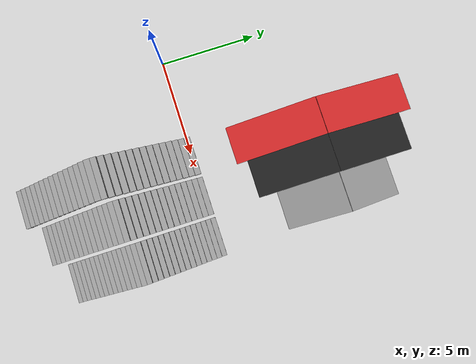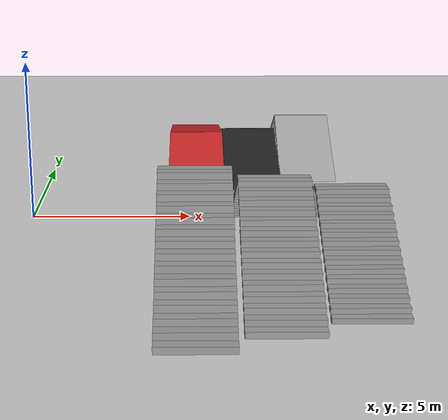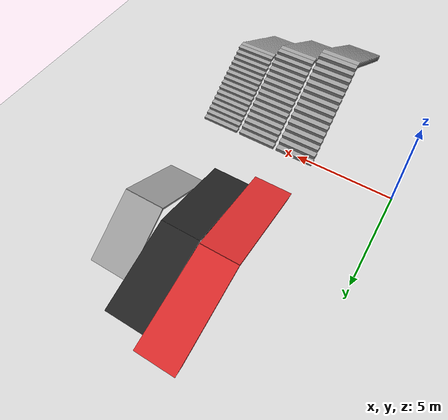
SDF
<sdf version="1.7">
 <world name="default">
  <light name="sun" type="directional">
   <pose>0 0 10 0 -0 0</pose>
   <diffuse>0.8 0.8 0.8 1</diffuse>
   <specular>0.2 0.2 0.2 1</specular>
   <attenuation>
    <range>1000</range>
    <constant>0.9</constant>
    <linear>0.01</linear>
    <quadratic>0.001</quadratic>
   </attenuation>
   <direction>-0.5 0.1 -0.9</direction>
   <spot><inner_angle>0</inner_angle><outer_angle>0</outer_angle><falloff>0</falloff></spot>
  </light>
  <model name="ground_plane">
   <static>1</static>
   <link name="link">
    <collision name="collision">
     <geometry><plane><normal>0 0 1</normal><size>100 100</size></plane></geometry>
     <surface>
      <contact><collide_bitmask>65535</collide_bitmask></contact>
      <friction><ode><mu>100</mu><mu2>50</mu2></ode></friction>
     </surface>
    </collision>
    <visual name="visual">
     <cast_shadows>0</cast_shadows>
     <geometry><plane><normal>0 0 1</normal><size>100 100</size></plane></geometry>
     <material>
      <script><uri>file://media/materials/scripts/gazebo.material</uri><name>Gazebo/Grey</name></script>
     </material>
    </visual>
   </link>
  </model>
  <gravity>0 0 -9.8</gravity>
  <magnetic_field>6e-06 2.3e-05 -4.2e-05</magnetic_field>
  <atmosphere type="adiabatic"/>
  <physics type="ode">
   <max_step_size>0.001</max_step_size>
   <real_time_factor>1</real_time_factor>
   <real_time_update_rate>1000</real_time_update_rate>
  </physics>
  <scene><ambient>0.4 0.4 0.4 1</ambient><background>0.7 0.7 0.7 1</background><shadows>1</shadows></scene>
  <spherical_coordinates>
   <surface_model>EARTH_WGS84</surface_model>
   <latitude_deg>0</latitude_deg>
   <longitude_deg>0</longitude_deg>
   <elevation>0</elevation>
   <heading_deg>0</heading_deg>
  </spherical_coordinates>
  <model name="3longstairs">
   <pose>5.245 -4.4525 0 0 -0 0</pose>
   <link name="Stairs_1">
    <visual name="Stairs_1_Visual_0">
     <pose>4.245 4.5225 0.075 0 -0 0</pose>
     <geometry><box><size>2 0.26 0.15</size></box></geometry>
     <material>
      <script><uri>file://media/materials/scripts/gazebo.material</uri><name>Gazebo/Grey</name></script>
      <ambient>1 1 1 1</ambient>
     </material>
     <meta><layer>0</layer></meta>
    </visual>
    <collision name="Stairs_1_Collision_0">
     <geometry><box><size>2 0.26 0.15</size></box></geometry>
     <pose>4.245 4.5225 0.075 0 -0 0</pose>
    </collision>
    <visual name="Stairs_1_Visual_1">
     <pose>4.245 4.2625 0.225 0 -0 0</pose>
     <geometry><box><size>2 0.26 0.15</size></box></geometry>
     <material>
      <script><uri>file://media/materials/scripts/gazebo.material</uri><name>Gazebo/Grey</name></script>
      <ambient>1 1 1 1</ambient>
     </material>
     <meta><layer>0</layer></meta>
    </visual>
    <collision name="Stairs_1_Collision_1">
     <geometry><box><size>2 0.26 0.15</size></box></geometry>
     <pose>4.245 4.2625 0.225 0 -0 0</pose>
    </collision>
    <visual name="Stairs_1_Visual_2">
     <pose>4.245 4.0025 0.375 0 -0 0</pose>
     <geometry><box><size>2 0.26 0.15</size></box></geometry>
     <material>
      <script><uri>file://media/materials/scripts/gazebo.material</uri><name>Gazebo/Grey</name></script>
      <ambient>1 1 1 1</ambient>
     </material>
     <meta><layer>0</layer></meta>
    </visual>
    <collision name="Stairs_1_Collision_2">
     <geometry><box><size>2 0.26 0.15</size></box></geometry>
     <pose>4.245 4.0025 0.375 0 -0 0</pose>
    </collision>
    <visual name="Stairs_1_Visual_3">
     <pose>4.245 3.7425 0.525 0 -0 0</pose>
     <geometry><box><size>2 0.26 0.15</size></box></geometry>
     <material>
      <script><uri>file://media/materials/scripts/gazebo.material</uri><name>Gazebo/Grey</name></script>
      <ambient>1 1 1 1</ambient>
     </material>
     <meta><layer>0</layer></meta>
    </visual>
    <collision name="Stairs_1_Collision_3">
     <geometry><box><size>2 0.26 0.15</size></box></geometry>
     <pose>4.245 3.7425 0.525 0 -0 0</pose>
    </collision>
    <visual name="Stairs_1_Visual_4">
     <pose>4.245 3.4825 0.675 0 -0 0</pose>
     <geometry><box><size>2 0.26 0.15</size></box></geometry>
     <material>
      <script><uri>file://media/materials/scripts/gazebo.material</uri><name>Gazebo/Grey</name></script>
      <ambient>1 1 1 1</ambient>
     </material>
     <meta><layer>0</layer></meta>
    </visual>
    <collision name="Stairs_1_Collision_4">
     <geometry><box><size>2 0.26 0.15</size></box></geometry>
     <pose>4.245 3.4825 0.675 0 -0 0</pose>
    </collision>
    <visual name="Stairs_1_Visual_5">
     <pose>4.245 3.2225 0.825 0 -0 0</pose>
     <geometry><box><size>2 0.26 0.15</size></box></geometry>
     <material>
      <script><uri>file://media/materials/scripts/gazebo.material</uri><name>Gazebo/Grey</name></script>
      <ambient>1 1 1 1</ambient>
     </material>
     <meta><layer>0</layer></meta>
    </visual>
    <collision name="Stairs_1_Collision_5">
     <geometry><box><size>2 0.26 0.15</size></box></geometry>
     <pose>4.245 3.2225 0.825 0 -0 0</pose>
    </collision>
    <visual name="Stairs_1_Visual_6">
     <pose>4.245 2.9625 0.975 0 -0 0</pose>
     <geometry><box><size>2 0.26 0.15</size></box></geometry>
     <material>
      <script><uri>file://media/materials/scripts/gazebo.material</uri><name>Gazebo/Grey</name></script>
      <ambient>1 1 1 1</ambient>
     </material>
     <meta><layer>0</layer></meta>
    </visual>
    <collision name="Stairs_1_Collision_6">
     <geometry><box><size>2 0.26 0.15</size></box></geometry>
     <pose>4.245 2.9625 0.975 0 -0 0</pose>
    </collision>
    <visual name="Stairs_1_Visual_7">
     <pose>4.245 2.7025 1.125 0 -0 0</pose>
     <geometry><box><size>2 0.26 0.15</size></box></geometry>
     <material>
      <script><uri>file://media/materials/scripts/gazebo.material</uri><name>Gazebo/Grey</name></script>
      <ambient>1 1 1 1</ambient>
     </material>
     <meta><layer>0</layer></meta>
    </visual>
    <collision name="Stairs_1_Collision_7">
     <geometry><box><size>2 0.26 0.15</size></box></geometry>
     <pose>4.245 2.7025 1.125 0 -0 0</pose>
    </collision>
    <visual name="Stairs_1_Visual_8">
     <pose>4.245 2.4425 1.275 0 -0 0</pose>
     <geometry><box><size>2 0.26 0.15</size></box></geometry>
     <material>
      <script><uri>file://media/materials/scripts/gazebo.material</uri><name>Gazebo/Grey</name></script>
      <ambient>1 1 1 1</ambient>
     </material>
     <meta><layer>0</layer></meta>
    </visual>
    <collision name="Stairs_1_Collision_8">
     <geometry><box><size>2 0.26 0.15</size></box></geometry>
     <pose>4.245 2.4425 1.275 0 -0 0</pose>
    </collision>
    <visual name="Stairs_1_Visual_9">
     <pose>4.245 2.1825 1.425 0 -0 0</pose>
     <geometry><box><size>2 0.26 0.15</size></box></geometry>
     <material>
      <script><uri>file://media/materials/scripts/gazebo.material</uri><name>Gazebo/Grey</name></script>
      <ambient>1 1 1 1</ambient>
     </material>
     <meta><layer>0</layer></meta>
    </visual>
    <collision name="Stairs_1_Collision_9">
     <geometry><box><size>2 0.26 0.15</size></box></geometry>
     <pose>4.245 2.1825 1.425 0 -0 0</pose>
    </collision>
    <visual name="Stairs_1_Visual_10">
     <pose>4.245 1.9225 1.575 0 -0 0</pose>
     <geometry><box><size>2 0.26 0.15</size></box></geometry>
     <material>
      <script><uri>file://media/materials/scripts/gazebo.material</uri><name>Gazebo/Grey</name></script>
      <ambient>1 1 1 1</ambient>
     </material>
     <meta><layer>0</layer></meta>
    </visual>
    <collision name="Stairs_1_Collision_10">
     <geometry><box><size>2 0.26 0.15</size></box></geometry>
     <pose>4.245 1.9225 1.575 0 -0 0</pose>
    </collision>
    <visual name="Stairs_1_Visual_11">
     <pose>4.245 1.6625 1.725 0 -0 0</pose>
     <geometry><box><size>2 0.26 0.15</size></box></geometry>
     <material>
      <script><uri>file://media/materials/scripts/gazebo.material</uri><name>Gazebo/Grey</name></script>
      <ambient>1 1 1 1</ambient>
     </material>
     <meta><layer>0</layer></meta>
    </visual>
    <collision name="Stairs_1_Collision_11">
     <geometry><box><size>2 0.26 0.15</size></box></geometry>
     <pose>4.245 1.6625 1.725 0 -0 0</pose>
    </collision>
    <visual name="Stairs_1_Visual_12">
     <pose>4.245 1.4025 1.875 0 -0 0</pose>
     <geometry><box><size>2 0.26 0.15</size></box></geometry>
     <material>
      <script><uri>file://media/materials/scripts/gazebo.material</uri><name>Gazebo/Grey</name></script>
      <ambient>1 1 1 1</ambient>
     </material>
     <meta><layer>0</layer></meta>
    </visual>
    <collision name="Stairs_1_Collision_12">
     <geometry><box><size>2 0.26 0.15</size></box></geometry>
     <pose>4.245 1.4025 1.875 0 -0 0</pose>
    </collision>
    <visual name="Stairs_1_Visual_13">
     <pose>4.245 1.1425 2.025 0 -0 0</pose>
     <geometry><box><size>2 0.26 0.15</size></box></geometry>
     <material>
      <script><uri>file://media/materials/scripts/gazebo.material</uri><name>Gazebo/Grey</name></script>
      <ambient>1 1 1 1</ambient>
     </material>
     <meta><layer>0</layer></meta>
    </visual>
    <collision name="Stairs_1_Collision_13">
     <geometry><box><size>2 0.26 0.15</size></box></geometry>
     <pose>4.245 1.1425 2.025 0 -0 0</pose>
    </collision>
    <visual name="Stairs_1_Visual_14">
     <pose>4.245 0.8825 2.175 0 -0 0</pose>
     <geometry><box><size>2 0.26 0.15</size></box></geometry>
     <material>
      <script><uri>file://media/materials/scripts/gazebo.material</uri><name>Gazebo/Grey</name></script>
      <ambient>1 1 1 1</ambient>
     </material>
     <meta><layer>0</layer></meta>
    </visual>
    <collision name="Stairs_1_Collision_14">
     <geometry><box><size>2 0.26 0.15</size></box></geometry>
     <pose>4.245 0.8825 2.175 0 -0 0</pose>
    </collision>
   </link>
   <link name="Stairs_2">
    <visual name="Stairs_2_Visual_0">
     <pose>4.245 -3.0175 0.075 0 -0 -3.14159</pose>
     <geometry><box><size>2 0.26 0.15</size></box></geometry>
     <material>
      <script><uri>file://media/materials/scripts/gazebo.material</uri><name>Gazebo/Grey</name></script>
      <ambient>1 1 1 1</ambient>
     </material>
     <meta><layer>0</layer></meta>
    </visual>
    <collision name="Stairs_2_Collision_0">
     <geometry><box><size>2 0.26 0.15</size></box></geometry>
     <pose>4.245 -3.0175 0.075 0 -0 -3.14159</pose>
    </collision>
    <visual name="Stairs_2_Visual_1">
     <pose>4.245 -2.7575 0.225 0 -0 -3.14159</pose>
     <geometry><box><size>2 0.26 0.15</size></box></geometry>
     <material>
      <script><uri>file://media/materials/scripts/gazebo.material</uri><name>Gazebo/Grey</name></script>
      <ambient>1 1 1 1</ambient>
     </material>
     <meta><layer>0</layer></meta>
    </visual>
    <collision name="Stairs_2_Collision_1">
     <geometry><box><size>2 0.26 0.15</size></box></geometry>
     <pose>4.245 -2.7575 0.225 0 -0 -3.14159</pose>
    </collision>
    <visual name="Stairs_2_Visual_2">
     <pose>4.245 -2.4975 0.375 0 -0 -3.14159</pose>
     <geometry><box><size>2 0.26 0.15</size></box></geometry>
     <material>
      <script><uri>file://media/materials/scripts/gazebo.material</uri><name>Gazebo/Grey</name></script>
      <ambient>1 1 1 1</ambient>
     </material>
     <meta><layer>0</layer></meta>
    </visual>
    <collision name="Stairs_2_Collision_2">
     <geometry><box><size>2 0.26 0.15</size></box></geometry>
     <pose>4.245 -2.4975 0.375 0 -0 -3.14159</pose>
    </collision>
    <visual name="Stairs_2_Visual_3">
     <pose>4.245 -2.2375 0.525 0 -0 -3.14159</pose>
     <geometry><box><size>2 0.26 0.15</size></box></geometry>
     <material>
      <script><uri>file://media/materials/scripts/gazebo.material</uri><name>Gazebo/Grey</name></script>
      <ambient>1 1 1 1</ambient>
     </material>
     <meta><layer>0</layer></meta>
    </visual>
    <collision name="Stairs_2_Collision_3">
     <geometry><box><size>2 0.26 0.15</size></box></geometry>
     <pose>4.245 -2.2375 0.525 0 -0 -3.14159</pose>
    </collision>
    <visual name="Stairs_2_Visual_4">
     <pose>4.245 -1.9775 0.675 0 -0 -3.14159</pose>
     <geometry><box><size>2 0.26 0.15</size></box></geometry>
     <material>
      <script><uri>file://media/materials/scripts/gazebo.material</uri><name>Gazebo/Grey</name></script>
      <ambient>1 1 1 1</ambient>
     </material>
     <meta><layer>0</layer></meta>
    </visual>
    <collision name="Stairs_2_Collision_4">
     <geometry><box><size>2 0.26 0.15</size></box></geometry>
     <pose>4.245 -1.9775 0.675 0 -0 -3.14159</pose>
    </collision>
    <visual name="Stairs_2_Visual_5">
     <pose>4.245 -1.7175 0.825 0 -0 -3.14159</pose>
     <geometry><box><size>2 0.26 0.15</size></box></geometry>
     <material>
      <script><uri>file://media/materials/scripts/gazebo.material</uri><name>Gazebo/Grey</name></script>
      <ambient>1 1 1 1</ambient>
     </material>
     <meta><layer>0</layer></meta>
    </visual>
    <collision name="Stairs_2_Collision_5">
     <geometry><box><size>2 0.26 0.15</size></box></geometry>
     <pose>4.245 -1.7175 0.825 0 -0 -3.14159</pose>
    </collision>
    <visual name="Stairs_2_Visual_6">
     <pose>4.245 -1.4575 0.975 0 -0 -3.14159</pose>
     <geometry><box><size>2 0.26 0.15</size></box></geometry>
     <material>
      <script><uri>file://media/materials/scripts/gazebo.material</uri><name>Gazebo/Grey</name></script>
      <ambient>1 1 1 1</ambient>
     </material>
     <meta><layer>0</layer></meta>
    </visual>
    <collision name="Stairs_2_Collision_6">
     <geometry><box><size>2 0.26 0.15</size></box></geometry>
     <pose>4.245 -1.4575 0.975 0 -0 -3.14159</pose>
    </collision>
    <visual name="Stairs_2_Visual_7">
     <pose>4.245 -1.1975 1.125 0 -0 -3.14159</pose>
     <geometry><box><size>2 0.26 0.15</size></box></geometry>
     <material>
      <script><uri>file://media/materials/scripts/gazebo.material</uri><name>Gazebo/Grey</name></script>
      <ambient>1 1 1 1</ambient>
     </material>
     <meta><layer>0</layer></meta>
    </visual>
    <collision name="Stairs_2_Collision_7">
     <geometry><box><size>2 0.26 0.15</size></box></geometry>
     <pose>4.245 -1.1975 1.125 0 -0 -3.14159</pose>
    </collision>
    <visual name="Stairs_2_Visual_8">
     <pose>4.245 -0.9375 1.275 0 -0 -3.14159</pose>
     <geometry><box><size>2 0.26 0.15</size></box></geometry>
     <material>
      <script><uri>file://media/materials/scripts/gazebo.material</uri><name>Gazebo/Grey</name></script>
      <ambient>1 1 1 1</ambient>
     </material>
     <meta><layer>0</layer></meta>
    </visual>
    <collision name="Stairs_2_Collision_8">
     <geometry><box><size>2 0.26 0.15</size></box></geometry>
     <pose>4.245 -0.9375 1.275 0 -0 -3.14159</pose>
    </collision>
    <visual name="Stairs_2_Visual_9">
     <pose>4.245 -0.6775 1.425 0 -0 -3.14159</pose>
     <geometry><box><size>2 0.26 0.15</size></box></geometry>
     <material>
      <script><uri>file://media/materials/scripts/gazebo.material</uri><name>Gazebo/Grey</name></script>
      <ambient>1 1 1 1</ambient>
     </material>
     <meta><layer>0</layer></meta>
    </visual>
    <collision name="Stairs_2_Collision_9">
     <geometry><box><size>2 0.26 0.15</size></box></geometry>
     <pose>4.245 -0.6775 1.425 0 -0 -3.14159</pose>
    </collision>
    <visual name="Stairs_2_Visual_10">
     <pose>4.245 -0.4175 1.575 0 -0 -3.14159</pose>
     <geometry><box><size>2 0.26 0.15</size></box></geometry>
     <material>
      <script><uri>file://media/materials/scripts/gazebo.material</uri><name>Gazebo/Grey</name></script>
      <ambient>1 1 1 1</ambient>
     </material>
     <meta><layer>0</layer></meta>
    </visual>
    <collision name="Stairs_2_Collision_10">
     <geometry><box><size>2 0.26 0.15</size></box></geometry>
     <pose>4.245 -0.4175 1.575 0 -0 -3.14159</pose>
    </collision>
    <visual name="Stairs_2_Visual_11">
     <pose>4.245 -0.1575 1.725 0 -0 -3.14159</pose>
     <geometry><box><size>2 0.26 0.15</size></box></geometry>
     <material>
      <script><uri>file://media/materials/scripts/gazebo.material</uri><name>Gazebo/Grey</name></script>
      <ambient>1 1 1 1</ambient>
     </material>
     <meta><layer>0</layer></meta>
    </visual>
    <collision name="Stairs_2_Collision_11">
     <geometry><box><size>2 0.26 0.15</size></box></geometry>
     <pose>4.245 -0.1575 1.725 0 -0 -3.14159</pose>
    </collision>
    <visual name="Stairs_2_Visual_12">
     <pose>4.245 0.1025 1.875 0 -0 -3.14159</pose>
     <geometry><box><size>2 0.26 0.15</size></box></geometry>
     <material>
      <script><uri>file://media/materials/scripts/gazebo.material</uri><name>Gazebo/Grey</name></script>
      <ambient>1 1 1 1</ambient>
     </material>
     <meta><layer>0</layer></meta>
    </visual>
    <collision name="Stairs_2_Collision_12">
     <geometry><box><size>2 0.26 0.15</size></box></geometry>
     <pose>4.245 0.1025 1.875 0 -0 -3.14159</pose>
    </collision>
    <visual name="Stairs_2_Visual_13">
     <pose>4.245 0.3625 2.025 0 -0 -3.14159</pose>
     <geometry><box><size>2 0.26 0.15</size></box></geometry>
     <material>
      <script><uri>file://media/materials/scripts/gazebo.material</uri><name>Gazebo/Grey</name></script>
      <ambient>1 1 1 1</ambient>
     </material>
     <meta><layer>0</layer></meta>
    </visual>
    <collision name="Stairs_2_Collision_13">
     <geometry><box><size>2 0.26 0.15</size></box></geometry>
     <pose>4.245 0.3625 2.025 0 -0 -3.14159</pose>
    </collision>
    <visual name="Stairs_2_Visual_14">
     <pose>4.245 0.6225 2.175 0 -0 -3.14159</pose>
     <geometry><box><size>2 0.26 0.15</size></box></geometry>
     <material>
      <script><uri>file://media/materials/scripts/gazebo.material</uri><name>Gazebo/Grey</name></script>
      <ambient>1 1 1 1</ambient>
     </material>
     <meta><layer>0</layer></meta>
    </visual>
    <collision name="Stairs_2_Collision_14">
     <geometry><box><size>2 0.26 0.15</size></box></geometry>
     <pose>4.245 0.6225 2.175 0 -0 -3.14159</pose>
    </collision>
   </link>
   <link name="Stairs_3">
    <visual name="Stairs_3_Visual_0">
     <pose>2.075 4.5075 0.0875 0 -0 0</pose>
     <geometry><box><size>2 0.285 0.175</size></box></geometry>
     <material>
      <script><uri>file://media/materials/scripts/gazebo.material</uri><name>Gazebo/Grey</name></script>
      <ambient>1 1 1 1</ambient>
     </material>
     <meta><layer>0</layer></meta>
    </visual>
    <collision name="Stairs_3_Collision_0">
     <geometry><box><size>2 0.285 0.175</size></box></geometry>
     <pose>2.075 4.5075 0.0875 0 -0 0</pose>
    </collision>
    <visual name="Stairs_3_Visual_1">
     <pose>2.075 4.2225 0.2625 0 -0 0</pose>
     <geometry><box><size>2 0.285 0.175</size></box></geometry>
     <material>
      <script><uri>file://media/materials/scripts/gazebo.material</uri><name>Gazebo/Grey</name></script>
      <ambient>1 1 1 1</ambient>
     </material>
     <meta><layer>0</layer></meta>
    </visual>
    <collision name="Stairs_3_Collision_1">
     <geometry><box><size>2 0.285 0.175</size></box></geometry>
     <pose>2.075 4.2225 0.2625 0 -0 0</pose>
    </collision>
    <visual name="Stairs_3_Visual_2">
     <pose>2.075 3.9375 0.4375 0 -0 0</pose>
     <geometry><box><size>2 0.285 0.175</size></box></geometry>
     <material>
      <script><uri>file://media/materials/scripts/gazebo.material</uri><name>Gazebo/Grey</name></script>
      <ambient>1 1 1 1</ambient>
     </material>
     <meta><layer>0</layer></meta>
    </visual>
    <collision name="Stairs_3_Collision_2">
     <geometry><box><size>2 0.285 0.175</size></box></geometry>
     <pose>2.075 3.9375 0.4375 0 -0 0</pose>
    </collision>
    <visual name="Stairs_3_Visual_3">
     <pose>2.075 3.6525 0.6125 0 -0 0</pose>
     <geometry><box><size>2 0.285 0.175</size></box></geometry>
     <material>
      <script><uri>file://media/materials/scripts/gazebo.material</uri><name>Gazebo/Grey</name></script>
      <ambient>1 1 1 1</ambient>
     </material>
     <meta><layer>0</layer></meta>
    </visual>
    <collision name="Stairs_3_Collision_3">
     <geometry><box><size>2 0.285 0.175</size></box></geometry>
     <pose>2.075 3.6525 0.6125 0 -0 0</pose>
    </collision>
    <visual name="Stairs_3_Visual_4">
     <pose>2.075 3.3675 0.7875 0 -0 0</pose>
     <geometry><box><size>2 0.285 0.175</size></box></geometry>
     <material>
      <script><uri>file://media/materials/scripts/gazebo.material</uri><name>Gazebo/Grey</name></script>
      <ambient>1 1 1 1</ambient>
     </material>
     <meta><layer>0</layer></meta>
    </visual>
    <collision name="Stairs_3_Collision_4">
     <geometry><box><size>2 0.285 0.175</size></box></geometry>
     <pose>2.075 3.3675 0.7875 0 -0 0</pose>
    </collision>
    <visual name="Stairs_3_Visual_5">
     <pose>2.075 3.0825 0.9625 0 -0 0</pose>
     <geometry><box><size>2 0.285 0.175</size></box></geometry>
     <material>
      <script><uri>file://media/materials/scripts/gazebo.material</uri><name>Gazebo/Grey</name></script>
      <ambient>1 1 1 1</ambient>
     </material>
     <meta><layer>0</layer></meta>
    </visual>
    <collision name="Stairs_3_Collision_5">
     <geometry><box><size>2 0.285 0.175</size></box></geometry>
     <pose>2.075 3.0825 0.9625 0 -0 0</pose>
    </collision>
    <visual name="Stairs_3_Visual_6">
     <pose>2.075 2.7975 1.1375 0 -0 0</pose>
     <geometry><box><size>2 0.285 0.175</size></box></geometry>
     <material>
      <script><uri>file://media/materials/scripts/gazebo.material</uri><name>Gazebo/Grey</name></script>
      <ambient>1 1 1 1</ambient>
     </material>
     <meta><layer>0</layer></meta>
    </visual>
    <collision name="Stairs_3_Collision_6">
     <geometry><box><size>2 0.285 0.175</size></box></geometry>
     <pose>2.075 2.7975 1.1375 0 -0 0</pose>
    </collision>
    <visual name="Stairs_3_Visual_7">
     <pose>2.075 2.5125 1.3125 0 -0 0</pose>
     <geometry><box><size>2 0.285 0.175</size></box></geometry>
     <material>
      <script><uri>file://media/materials/scripts/gazebo.material</uri><name>Gazebo/Grey</name></script>
      <ambient>1 1 1 1</ambient>
     </material>
     <meta><layer>0</layer></meta>
    </visual>
    <collision name="Stairs_3_Collision_7">
     <geometry><box><size>2 0.285 0.175</size></box></geometry>
     <pose>2.075 2.5125 1.3125 0 -0 0</pose>
    </collision>
    <visual name="Stairs_3_Visual_8">
     <pose>2.075 2.2275 1.4875 0 -0 0</pose>
     <geometry><box><size>2 0.285 0.175</size></box></geometry>
     <material>
      <script><uri>file://media/materials/scripts/gazebo.material</uri><name>Gazebo/Grey</name></script>
      <ambient>1 1 1 1</ambient>
     </material>
     <meta><layer>0</layer></meta>
    </visual>
    <collision name="Stairs_3_Collision_8">
     <geometry><box><size>2 0.285 0.175</size></box></geometry>
     <pose>2.075 2.2275 1.4875 0 -0 0</pose>
    </collision>
    <visual name="Stairs_3_Visual_9">
     <pose>2.075 1.9425 1.6625 0 -0 0</pose>
     <geometry><box><size>2 0.285 0.175</size></box></geometry>
     <material>
      <script><uri>file://media/materials/scripts/gazebo.material</uri><name>Gazebo/Grey</name></script>
      <ambient>1 1 1 1</ambient>
     </material>
     <meta><layer>0</layer></meta>
    </visual>
    <collision name="Stairs_3_Collision_9">
     <geometry><box><size>2 0.285 0.175</size></box></geometry>
     <pose>2.075 1.9425 1.6625 0 -0 0</pose>
    </collision>
    <visual name="Stairs_3_Visual_10">
     <pose>2.075 1.6575 1.8375 0 -0 0</pose>
     <geometry><box><size>2 0.285 0.175</size></box></geometry>
     <material>
      <script><uri>file://media/materials/scripts/gazebo.material</uri><name>Gazebo/Grey</name></script>
      <ambient>1 1 1 1</ambient>
     </material>
     <meta><layer>0</layer></meta>
    </visual>
    <collision name="Stairs_3_Collision_10">
     <geometry><box><size>2 0.285 0.175</size></box></geometry>
     <pose>2.075 1.6575 1.8375 0 -0 0</pose>
    </collision>
    <visual name="Stairs_3_Visual_11">
     <pose>2.075 1.3725 2.0125 0 -0 0</pose>
     <geometry><box><size>2 0.285 0.175</size></box></geometry>
     <material>
      <script><uri>file://media/materials/scripts/gazebo.material</uri><name>Gazebo/Grey</name></script>
      <ambient>1 1 1 1</ambient>
     </material>
     <meta><layer>0</layer></meta>
    </visual>
    <collision name="Stairs_3_Collision_11">
     <geometry><box><size>2 0.285 0.175</size></box></geometry>
     <pose>2.075 1.3725 2.0125 0 -0 0</pose>
    </collision>
    <visual name="Stairs_3_Visual_12">
     <pose>2.075 1.0875 2.1875 0 -0 0</pose>
     <geometry><box><size>2 0.285 0.175</size></box></geometry>
     <material>
      <script><uri>file://media/materials/scripts/gazebo.material</uri><name>Gazebo/Grey</name></script>
      <ambient>1 1 1 1</ambient>
     </material>
     <meta><layer>0</layer></meta>
    </visual>
    <collision name="Stairs_3_Collision_12">
     <geometry><box><size>2 0.285 0.175</size></box></geometry>
     <pose>2.075 1.0875 2.1875 0 -0 0</pose>
    </collision>
    <visual name="Stairs_3_Visual_13">
     <pose>2.075 0.8025 2.3625 0 -0 0</pose>
     <geometry><box><size>2 0.285 0.175</size></box></geometry>
     <material>
      <script><uri>file://media/materials/scripts/gazebo.material</uri><name>Gazebo/Grey</name></script>
      <ambient>1 1 1 1</ambient>
     </material>
     <meta><layer>0</layer></meta>
    </visual>
    <collision name="Stairs_3_Collision_13">
     <geometry><box><size>2 0.285 0.175</size></box></geometry>
     <pose>2.075 0.8025 2.3625 0 -0 0</pose>
    </collision>
    <visual name="Stairs_3_Visual_14">
     <pose>2.075 0.5175 2.5375 0 -0 0</pose>
     <geometry><box><size>2 0.285 0.175</size></box></geometry>
     <material>
      <script><uri>file://media/materials/scripts/gazebo.material</uri><name>Gazebo/Grey</name></script>
      <ambient>1 1 1 1</ambient>
     </material>
     <meta><layer>0</layer></meta>
    </visual>
    <collision name="Stairs_3_Collision_14">
     <geometry><box><size>2 0.285 0.175</size></box></geometry>
     <pose>2.075 0.5175 2.5375 0 -0 0</pose>
    </collision>
   </link>
   <link name="Stairs_4">
    <visual name="Stairs_4_Visual_0">
     <pose>2.075 -3.7525 0.0875 0 -0 -3.14159</pose>
     <geometry><box><size>2 0.285 0.175</size></box></geometry>
     <material>
      <script><uri>file://media/materials/scripts/gazebo.material</uri><name>Gazebo/Grey</name></script>
      <ambient>1 1 1 1</ambient>
     </material>
     <meta><layer>0</layer></meta>
    </visual>
    <collision name="Stairs_4_Collision_0">
     <geometry><box><size>2 0.285 0.175</size></box></geometry>
     <pose>2.075 -3.7525 0.0875 0 -0 -3.14159</pose>
    </collision>
    <visual name="Stairs_4_Visual_1">
     <pose>2.075 -3.4675 0.2625 0 -0 -3.14159</pose>
     <geometry><box><size>2 0.285 0.175</size></box></geometry>
     <material>
      <script><uri>file://media/materials/scripts/gazebo.material</uri><name>Gazebo/Grey</name></script>
      <ambient>1 1 1 1</ambient>
     </material>
     <meta><layer>0</layer></meta>
    </visual>
    <collision name="Stairs_4_Collision_1">
     <geometry><box><size>2 0.285 0.175</size></box></geometry>
     <pose>2.075 -3.4675 0.2625 0 -0 -3.14159</pose>
    </collision>
    <visual name="Stairs_4_Visual_2">
     <pose>2.075 -3.1825 0.4375 0 -0 -3.14159</pose>
     <geometry><box><size>2 0.285 0.175</size></box></geometry>
     <material>
      <script><uri>file://media/materials/scripts/gazebo.material</uri><name>Gazebo/Grey</name></script>
      <ambient>1 1 1 1</ambient>
     </material>
     <meta><layer>0</layer></meta>
    </visual>
    <collision name="Stairs_4_Collision_2">
     <geometry><box><size>2 0.285 0.175</size></box></geometry>
     <pose>2.075 -3.1825 0.4375 0 -0 -3.14159</pose>
    </collision>
    <visual name="Stairs_4_Visual_3">
     <pose>2.075 -2.8975 0.6125 0 -0 -3.14159</pose>
     <geometry><box><size>2 0.285 0.175</size></box></geometry>
     <material>
      <script><uri>file://media/materials/scripts/gazebo.material</uri><name>Gazebo/Grey</name></script>
      <ambient>1 1 1 1</ambient>
     </material>
     <meta><layer>0</layer></meta>
    </visual>
    <collision name="Stairs_4_Collision_3">
     <geometry><box><size>2 0.285 0.175</size></box></geometry>
     <pose>2.075 -2.8975 0.6125 0 -0 -3.14159</pose>
    </collision>
    <visual name="Stairs_4_Visual_4">
     <pose>2.075 -2.6125 0.7875 0 -0 -3.14159</pose>
     <geometry><box><size>2 0.285 0.175</size></box></geometry>
     <material>
      <script><uri>file://media/materials/scripts/gazebo.material</uri><name>Gazebo/Grey</name></script>
      <ambient>1 1 1 1</ambient>
     </material>
     <meta><layer>0</layer></meta>
    </visual>
    <collision name="Stairs_4_Collision_4">
     <geometry><box><size>2 0.285 0.175</size></box></geometry>
     <pose>2.075 -2.6125 0.7875 0 -0 -3.14159</pose>
    </collision>
    <visual name="Stairs_4_Visual_5">
     <pose>2.075 -2.3275 0.9625 0 -0 -3.14159</pose>
     <geometry><box><size>2 0.285 0.175</size></box></geometry>
     <material>
      <script><uri>file://media/materials/scripts/gazebo.material</uri><name>Gazebo/Grey</name></script>
      <ambient>1 1 1 1</ambient>
     </material>
     <meta><layer>0</layer></meta>
    </visual>
    <collision name="Stairs_4_Collision_5">
     <geometry><box><size>2 0.285 0.175</size></box></geometry>
     <pose>2.075 -2.3275 0.9625 0 -0 -3.14159</pose>
    </collision>
    <visual name="Stairs_4_Visual_6">
     <pose>2.075 -2.0425 1.1375 0 -0 -3.14159</pose>
     <geometry><box><size>2 0.285 0.175</size></box></geometry>
     <material>
      <script><uri>file://media/materials/scripts/gazebo.material</uri><name>Gazebo/Grey</name></script>
      <ambient>1 1 1 1</ambient>
     </material>
     <meta><layer>0</layer></meta>
    </visual>
    <collision name="Stairs_4_Collision_6">
     <geometry><box><size>2 0.285 0.175</size></box></geometry>
     <pose>2.075 -2.0425 1.1375 0 -0 -3.14159</pose>
    </collision>
    <visual name="Stairs_4_Visual_7">
     <pose>2.075 -1.7575 1.3125 0 -0 -3.14159</pose>
     <geometry><box><size>2 0.285 0.175</size></box></geometry>
     <material>
      <script><uri>file://media/materials/scripts/gazebo.material</uri><name>Gazebo/Grey</name></script>
      <ambient>1 1 1 1</ambient>
     </material>
     <meta><layer>0</layer></meta>
    </visual>
    <collision name="Stairs_4_Collision_7">
     <geometry><box><size>2 0.285 0.175</size></box></geometry>
     <pose>2.075 -1.7575 1.3125 0 -0 -3.14159</pose>
    </collision>
    <visual name="Stairs_4_Visual_8">
     <pose>2.075 -1.4725 1.4875 0 -0 -3.14159</pose>
     <geometry><box><size>2 0.285 0.175</size></box></geometry>
     <material>
      <script><uri>file://media/materials/scripts/gazebo.material</uri><name>Gazebo/Grey</name></script>
      <ambient>1 1 1 1</ambient>
     </material>
     <meta><layer>0</layer></meta>
    </visual>
    <collision name="Stairs_4_Collision_8">
     <geometry><box><size>2 0.285 0.175</size></box></geometry>
     <pose>2.075 -1.4725 1.4875 0 -0 -3.14159</pose>
    </collision>
    <visual name="Stairs_4_Visual_9">
     <pose>2.075 -1.1875 1.6625 0 -0 -3.14159</pose>
     <geometry><box><size>2 0.285 0.175</size></box></geometry>
     <material>
      <script><uri>file://media/materials/scripts/gazebo.material</uri><name>Gazebo/Grey</name></script>
      <ambient>1 1 1 1</ambient>
     </material>
     <meta><layer>0</layer></meta>
    </visual>
    <collision name="Stairs_4_Collision_9">
     <geometry><box><size>2 0.285 0.175</size></box></geometry>
     <pose>2.075 -1.1875 1.6625 0 -0 -3.14159</pose>
    </collision>
    <visual name="Stairs_4_Visual_10">
     <pose>2.075 -0.9025 1.8375 0 -0 -3.14159</pose>
     <geometry><box><size>2 0.285 0.175</size></box></geometry>
     <material>
      <script><uri>file://media/materials/scripts/gazebo.material</uri><name>Gazebo/Grey</name></script>
      <ambient>1 1 1 1</ambient>
     </material>
     <meta><layer>0</layer></meta>
    </visual>
    <collision name="Stairs_4_Collision_10">
     <geometry><box><size>2 0.285 0.175</size></box></geometry>
     <pose>2.075 -0.9025 1.8375 0 -0 -3.14159</pose>
    </collision>
    <visual name="Stairs_4_Visual_11">
     <pose>2.075 -0.617499 2.0125 0 -0 -3.14159</pose>
     <geometry><box><size>2 0.285 0.175</size></box></geometry>
     <material>
      <script><uri>file://media/materials/scripts/gazebo.material</uri><name>Gazebo/Grey</name></script>
      <ambient>1 1 1 1</ambient>
     </material>
     <meta><layer>0</layer></meta>
    </visual>
    <collision name="Stairs_4_Collision_11">
     <geometry><box><size>2 0.285 0.175</size></box></geometry>
     <pose>2.075 -0.617499 2.0125 0 -0 -3.14159</pose>
    </collision>
    <visual name="Stairs_4_Visual_12">
     <pose>2.075 -0.3325 2.1875 0 -0 -3.14159</pose>
     <geometry><box><size>2 0.285 0.175</size></box></geometry>
     <material>
      <script><uri>file://media/materials/scripts/gazebo.material</uri><name>Gazebo/Grey</name></script>
      <ambient>1 1 1 1</ambient>
     </material>
     <meta><layer>0</layer></meta>
    </visual>
    <collision name="Stairs_4_Collision_12">
     <geometry><box><size>2 0.285 0.175</size></box></geometry>
     <pose>2.075 -0.3325 2.1875 0 -0 -3.14159</pose>
    </collision>
    <visual name="Stairs_4_Visual_13">
     <pose>2.075 -0.0475 2.3625 0 -0 -3.14159</pose>
     <geometry><box><size>2 0.285 0.175</size></box></geometry>
     <material>
      <script><uri>file://media/materials/scripts/gazebo.material</uri><name>Gazebo/Grey</name></script>
      <ambient>1 1 1 1</ambient>
     </material>
     <meta><layer>0</layer></meta>
    </visual>
    <collision name="Stairs_4_Collision_13">
     <geometry><box><size>2 0.285 0.175</size></box></geometry>
     <pose>2.075 -0.0475 2.3625 0 -0 -3.14159</pose>
    </collision>
    <visual name="Stairs_4_Visual_14">
     <pose>2.075 0.2375 2.5375 0 -0 -3.14159</pose>
     <geometry><box><size>2 0.285 0.175</size></box></geometry>
     <material>
      <script><uri>file://media/materials/scripts/gazebo.material</uri><name>Gazebo/Grey</name></script>
      <ambient>1 1 1 1</ambient>
     </material>
     <meta><layer>0</layer></meta>
    </visual>
    <collision name="Stairs_4_Collision_14">
     <geometry><box><size>2 0.285 0.175</size></box></geometry>
     <pose>2.075 0.2375 2.5375 0 -0 -3.14159</pose>
    </collision>
   </link>
   <link name="Stairs_5">
    <visual name="Stairs_5_Visual_0">
     <pose>-0.095 4.4925 0.1 0 -0 0</pose>
     <geometry><box><size>2 0.31 0.2</size></box></geometry>
     <material>
      <script><uri>file://media/materials/scripts/gazebo.material</uri><name>Gazebo/Grey</name></script>
      <ambient>1 1 1 1</ambient>
     </material>
     <meta><layer>0</layer></meta>
    </visual>
    <collision name="Stairs_5_Collision_0">
     <geometry><box><size>2 0.31 0.2</size></box></geometry>
     <pose>-0.095 4.4925 0.1 0 -0 0</pose>
    </collision>
    <visual name="Stairs_5_Visual_1">
     <pose>-0.095 4.1825 0.3 0 -0 0</pose>
     <geometry><box><size>2 0.31 0.2</size></box></geometry>
     <material>
      <script><uri>file://media/materials/scripts/gazebo.material</uri><name>Gazebo/Grey</name></script>
      <ambient>1 1 1 1</ambient>
     </material>
     <meta><layer>0</layer></meta>
    </visual>
    <collision name="Stairs_5_Collision_1">
     <geometry><box><size>2 0.31 0.2</size></box></geometry>
     <pose>-0.095 4.1825 0.3 0 -0 0</pose>
    </collision>
    <visual name="Stairs_5_Visual_2">
     <pose>-0.095 3.8725 0.5 0 -0 0</pose>
     <geometry><box><size>2 0.31 0.2</size></box></geometry>
     <material>
      <script><uri>file://media/materials/scripts/gazebo.material</uri><name>Gazebo/Grey</name></script>
      <ambient>1 1 1 1</ambient>
     </material>
     <meta><layer>0</layer></meta>
    </visual>
    <collision name="Stairs_5_Collision_2">
     <geometry><box><size>2 0.31 0.2</size></box></geometry>
     <pose>-0.095 3.8725 0.5 0 -0 0</pose>
    </collision>
    <visual name="Stairs_5_Visual_3">
     <pose>-0.095 3.5625 0.7 0 -0 0</pose>
     <geometry><box><size>2 0.31 0.2</size></box></geometry>
     <material>
      <script><uri>file://media/materials/scripts/gazebo.material</uri><name>Gazebo/Grey</name></script>
      <ambient>1 1 1 1</ambient>
     </material>
     <meta><layer>0</layer></meta>
    </visual>
    <collision name="Stairs_5_Collision_3">
     <geometry><box><size>2 0.31 0.2</size></box></geometry>
     <pose>-0.095 3.5625 0.7 0 -0 0</pose>
    </collision>
    <visual name="Stairs_5_Visual_4">
     <pose>-0.095 3.2525 0.9 0 -0 0</pose>
     <geometry><box><size>2 0.31 0.2</size></box></geometry>
     <material>
      <script><uri>file://media/materials/scripts/gazebo.material</uri><name>Gazebo/Grey</name></script>
      <ambient>1 1 1 1</ambient>
     </material>
     <meta><layer>0</layer></meta>
    </visual>
    <collision name="Stairs_5_Collision_4">
     <geometry><box><size>2 0.31 0.2</size></box></geometry>
     <pose>-0.095 3.2525 0.9 0 -0 0</pose>
    </collision>
    <visual name="Stairs_5_Visual_5">
     <pose>-0.095 2.9425 1.1 0 -0 0</pose>
     <geometry><box><size>2 0.31 0.2</size></box></geometry>
     <material>
      <script><uri>file://media/materials/scripts/gazebo.material</uri><name>Gazebo/Grey</name></script>
      <ambient>1 1 1 1</ambient>
     </material>
     <meta><layer>0</layer></meta>
    </visual>
    <collision name="Stairs_5_Collision_5">
     <geometry><box><size>2 0.31 0.2</size></box></geometry>
     <pose>-0.095 2.9425 1.1 0 -0 0</pose>
    </collision>
    <visual name="Stairs_5_Visual_6">
     <pose>-0.095 2.6325 1.3 0 -0 0</pose>
     <geometry><box><size>2 0.31 0.2</size></box></geometry>
     <material>
      <script><uri>file://media/materials/scripts/gazebo.material</uri><name>Gazebo/Grey</name></script>
      <ambient>1 1 1 1</ambient>
     </material>
     <meta><layer>0</layer></meta>
    </visual>
    <collision name="Stairs_5_Collision_6">
     <geometry><box><size>2 0.31 0.2</size></box></geometry>
     <pose>-0.095 2.6325 1.3 0 -0 0</pose>
    </collision>
    <visual name="Stairs_5_Visual_7">
     <pose>-0.095 2.3225 1.5 0 -0 0</pose>
     <geometry><box><size>2 0.31 0.2</size></box></geometry>
     <material>
      <script><uri>file://media/materials/scripts/gazebo.material</uri><name>Gazebo/Grey</name></script>
      <ambient>1 1 1 1</ambient>
     </material>
     <meta><layer>0</layer></meta>
    </visual>
    <collision name="Stairs_5_Collision_7">
     <geometry><box><size>2 0.31 0.2</size></box></geometry>
     <pose>-0.095 2.3225 1.5 0 -0 0</pose>
    </collision>
    <visual name="Stairs_5_Visual_8">
     <pose>-0.095 2.0125 1.7 0 -0 0</pose>
     <geometry><box><size>2 0.31 0.2</size></box></geometry>
     <material>
      <script><uri>file://media/materials/scripts/gazebo.material</uri><name>Gazebo/Grey</name></script>
      <ambient>1 1 1 1</ambient>
     </material>
     <meta><layer>0</layer></meta>
    </visual>
    <collision name="Stairs_5_Collision_8">
     <geometry><box><size>2 0.31 0.2</size></box></geometry>
     <pose>-0.095 2.0125 1.7 0 -0 0</pose>
    </collision>
    <visual name="Stairs_5_Visual_9">
     <pose>-0.095 1.7025 1.9 0 -0 0</pose>
     <geometry><box><size>2 0.31 0.2</size></box></geometry>
     <material>
      <script><uri>file://media/materials/scripts/gazebo.material</uri><name>Gazebo/Grey</name></script>
      <ambient>1 1 1 1</ambient>
     </material>
     <meta><layer>0</layer></meta>
    </visual>
    <collision name="Stairs_5_Collision_9">
     <geometry><box><size>2 0.31 0.2</size></box></geometry>
     <pose>-0.095 1.7025 1.9 0 -0 0</pose>
    </collision>
    <visual name="Stairs_5_Visual_10">
     <pose>-0.095 1.3925 2.1 0 -0 0</pose>
     <geometry><box><size>2 0.31 0.2</size></box></geometry>
     <material>
      <script><uri>file://media/materials/scripts/gazebo.material</uri><name>Gazebo/Grey</name></script>
      <ambient>1 1 1 1</ambient>
     </material>
     <meta><layer>0</layer></meta>
    </visual>
    <collision name="Stairs_5_Collision_10">
     <geometry><box><size>2 0.31 0.2</size></box></geometry>
     <pose>-0.095 1.3925 2.1 0 -0 0</pose>
    </collision>
    <visual name="Stairs_5_Visual_11">
     <pose>-0.095 1.0825 2.3 0 -0 0</pose>
     <geometry><box><size>2 0.31 0.2</size></box></geometry>
     <material>
      <script><uri>file://media/materials/scripts/gazebo.material</uri><name>Gazebo/Grey</name></script>
      <ambient>1 1 1 1</ambient>
     </material>
     <meta><layer>0</layer></meta>
    </visual>
    <collision name="Stairs_5_Collision_11">
     <geometry><box><size>2 0.31 0.2</size></box></geometry>
     <pose>-0.095 1.0825 2.3 0 -0 0</pose>
    </collision>
    <visual name="Stairs_5_Visual_12">
     <pose>-0.095 0.7725 2.5 0 -0 0</pose>
     <geometry><box><size>2 0.31 0.2</size></box></geometry>
     <material>
      <script><uri>file://media/materials/scripts/gazebo.material</uri><name>Gazebo/Grey</name></script>
      <ambient>1 1 1 1</ambient>
     </material>
     <meta><layer>0</layer></meta>
    </visual>
    <collision name="Stairs_5_Collision_12">
     <geometry><box><size>2 0.31 0.2</size></box></geometry>
     <pose>-0.095 0.7725 2.5 0 -0 0</pose>
    </collision>
    <visual name="Stairs_5_Visual_13">
     <pose>-0.095 0.4625 2.7 0 -0 0</pose>
     <geometry><box><size>2 0.31 0.2</size></box></geometry>
     <material>
      <script><uri>file://media/materials/scripts/gazebo.material</uri><name>Gazebo/Grey</name></script>
      <ambient>1 1 1 1</ambient>
     </material>
     <meta><layer>0</layer></meta>
    </visual>
    <collision name="Stairs_5_Collision_13">
     <geometry><box><size>2 0.31 0.2</size></box></geometry>
     <pose>-0.095 0.4625 2.7 0 -0 0</pose>
    </collision>
    <visual name="Stairs_5_Visual_14">
     <pose>-0.095 0.1525 2.9 0 -0 0</pose>
     <geometry><box><size>2 0.31 0.2</size></box></geometry>
     <material>
      <script><uri>file://media/materials/scripts/gazebo.material</uri><name>Gazebo/Grey</name></script>
      <ambient>1 1 1 1</ambient>
     </material>
     <meta><layer>0</layer></meta>
    </visual>
    <collision name="Stairs_5_Collision_14">
     <geometry><box><size>2 0.31 0.2</size></box></geometry>
     <pose>-0.095 0.1525 2.9 0 -0 0</pose>
    </collision>
   </link>
   <link name="Stairs_6">
    <visual name="Stairs_6_Visual_0">
     <pose>-0.095 -4.4975 0.1 0 -0 -3.14159</pose>
     <geometry><box><size>2 0.31 0.2</size></box></geometry>
     <material>
      <script><uri>file://media/materials/scripts/gazebo.material</uri><name>Gazebo/Grey</name></script>
      <ambient>1 1 1 1</ambient>
     </material>
     <meta><layer>0</layer></meta>
    </visual>
    <collision name="Stairs_6_Collision_0">
     <geometry><box><size>2 0.31 0.2</size></box></geometry>
     <pose>-0.095 -4.4975 0.1 0 -0 -3.14159</pose>
    </collision>
    <visual name="Stairs_6_Visual_1">
     <pose>-0.095 -4.1875 0.3 0 -0 -3.14159</pose>
     <geometry><box><size>2 0.31 0.2</size></box></geometry>
     <material>
      <script><uri>file://media/materials/scripts/gazebo.material</uri><name>Gazebo/Grey</name></script>
      <ambient>1 1 1 1</ambient>
     </material>
     <meta><layer>0</layer></meta>
    </visual>
    <collision name="Stairs_6_Collision_1">
     <geometry><box><size>2 0.31 0.2</size></box></geometry>
     <pose>-0.095 -4.1875 0.3 0 -0 -3.14159</pose>
    </collision>
    <visual name="Stairs_6_Visual_2">
     <pose>-0.095 -3.8775 0.5 0 -0 -3.14159</pose>
     <geometry><box><size>2 0.31 0.2</size></box></geometry>
     <material>
      <script><uri>file://media/materials/scripts/gazebo.material</uri><name>Gazebo/Grey</name></script>
      <ambient>1 1 1 1</ambient>
     </material>
     <meta><layer>0</layer></meta>
    </visual>
    <collision name="Stairs_6_Collision_2">
     <geometry><box><size>2 0.31 0.2</size></box></geometry>
     <pose>-0.095 -3.8775 0.5 0 -0 -3.14159</pose>
    </collision>
    <visual name="Stairs_6_Visual_3">
     <pose>-0.095 -3.5675 0.7 0 -0 -3.14159</pose>
     <geometry><box><size>2 0.31 0.2</size></box></geometry>
     <material>
      <script><uri>file://media/materials/scripts/gazebo.material</uri><name>Gazebo/Grey</name></script>
      <ambient>1 1 1 1</ambient>
     </material>
     <meta><layer>0</layer></meta>
    </visual>
    <collision name="Stairs_6_Collision_3">
     <geometry><box><size>2 0.31 0.2</size></box></geometry>
     <pose>-0.095 -3.5675 0.7 0 -0 -3.14159</pose>
    </collision>
    <visual name="Stairs_6_Visual_4">
     <pose>-0.095 -3.2575 0.9 0 -0 -3.14159</pose>
     <geometry><box><size>2 0.31 0.2</size></box></geometry>
     <material>
      <script><uri>file://media/materials/scripts/gazebo.material</uri><name>Gazebo/Grey</name></script>
      <ambient>1 1 1 1</ambient>
     </material>
     <meta><layer>0</layer></meta>
    </visual>
    <collision name="Stairs_6_Collision_4">
     <geometry><box><size>2 0.31 0.2</size></box></geometry>
     <pose>-0.095 -3.2575 0.9 0 -0 -3.14159</pose>
    </collision>
    <visual name="Stairs_6_Visual_5">
     <pose>-0.095 -2.9475 1.1 0 -0 -3.14159</pose>
     <geometry><box><size>2 0.31 0.2</size></box></geometry>
     <material>
      <script><uri>file://media/materials/scripts/gazebo.material</uri><name>Gazebo/Grey</name></script>
      <ambient>1 1 1 1</ambient>
     </material>
     <meta><layer>0</layer></meta>
    </visual>
    <collision name="Stairs_6_Collision_5">
     <geometry><box><size>2 0.31 0.2</size></box></geometry>
     <pose>-0.095 -2.9475 1.1 0 -0 -3.14159</pose>
    </collision>
    <visual name="Stairs_6_Visual_6">
     <pose>-0.095 -2.6375 1.3 0 -0 -3.14159</pose>
     <geometry><box><size>2 0.31 0.2</size></box></geometry>
     <material>
      <script><uri>file://media/materials/scripts/gazebo.material</uri><name>Gazebo/Grey</name></script>
      <ambient>1 1 1 1</ambient>
     </material>
     <meta><layer>0</layer></meta>
    </visual>
    <collision name="Stairs_6_Collision_6">
     <geometry><box><size>2 0.31 0.2</size></box></geometry>
     <pose>-0.095 -2.6375 1.3 0 -0 -3.14159</pose>
    </collision>
    <visual name="Stairs_6_Visual_7">
     <pose>-0.095 -2.3275 1.5 0 -0 -3.14159</pose>
     <geometry><box><size>2 0.31 0.2</size></box></geometry>
     <material>
      <script><uri>file://media/materials/scripts/gazebo.material</uri><name>Gazebo/Grey</name></script>
      <ambient>1 1 1 1</ambient>
     </material>
     <meta><layer>0</layer></meta>
    </visual>
    <collision name="Stairs_6_Collision_7">
     <geometry><box><size>2 0.31 0.2</size></box></geometry>
     <pose>-0.095 -2.3275 1.5 0 -0 -3.14159</pose>
    </collision>
    <visual name="Stairs_6_Visual_8">
     <pose>-0.095 -2.0175 1.7 0 -0 -3.14159</pose>
     <geometry><box><size>2 0.31 0.2</size></box></geometry>
     <material>
      <script><uri>file://media/materials/scripts/gazebo.material</uri><name>Gazebo/Grey</name></script>
      <ambient>1 1 1 1</ambient>
     </material>
     <meta><layer>0</layer></meta>
    </visual>
    <collision name="Stairs_6_Collision_8">
     <geometry><box><size>2 0.31 0.2</size></box></geometry>
     <pose>-0.095 -2.0175 1.7 0 -0 -3.14159</pose>
    </collision>
    <visual name="Stairs_6_Visual_9">
     <pose>-0.095 -1.7075 1.9 0 -0 -3.14159</pose>
     <geometry><box><size>2 0.31 0.2</size></box></geometry>
     <material>
      <script><uri>file://media/materials/scripts/gazebo.material</uri><name>Gazebo/Grey</name></script>
      <ambient>1 1 1 1</ambient>
     </material>
     <meta><layer>0</layer></meta>
    </visual>
    <collision name="Stairs_6_Collision_9">
     <geometry><box><size>2 0.31 0.2</size></box></geometry>
     <pose>-0.095 -1.7075 1.9 0 -0 -3.14159</pose>
    </collision>
    <visual name="Stairs_6_Visual_10">
     <pose>-0.095 -1.3975 2.1 0 -0 -3.14159</pose>
     <geometry><box><size>2 0.31 0.2</size></box></geometry>
     <material>
      <script><uri>file://media/materials/scripts/gazebo.material</uri><name>Gazebo/Grey</name></script>
      <ambient>1 1 1 1</ambient>
     </material>
     <meta><layer>0</layer></meta>
    </visual>
    <collision name="Stairs_6_Collision_10">
     <geometry><box><size>2 0.31 0.2</size></box></geometry>
     <pose>-0.095 -1.3975 2.1 0 -0 -3.14159</pose>
    </collision>
    <visual name="Stairs_6_Visual_11">
     <pose>-0.095 -1.0875 2.3 0 -0 -3.14159</pose>
     <geometry><box><size>2 0.31 0.2</size></box></geometry>
     <material>
      <script><uri>file://media/materials/scripts/gazebo.material</uri><name>Gazebo/Grey</name></script>
      <ambient>1 1 1 1</ambient>
     </material>
     <meta><layer>0</layer></meta>
    </visual>
    <collision name="Stairs_6_Collision_11">
     <geometry><box><size>2 0.31 0.2</size></box></geometry>
     <pose>-0.095 -1.0875 2.3 0 -0 -3.14159</pose>
    </collision>
    <visual name="Stairs_6_Visual_12">
     <pose>-0.095 -0.7775 2.5 0 -0 -3.14159</pose>
     <geometry><box><size>2 0.31 0.2</size></box></geometry>
     <material>
      <script><uri>file://media/materials/scripts/gazebo.material</uri><name>Gazebo/Grey</name></script>
      <ambient>1 1 1 1</ambient>
     </material>
     <meta><layer>0</layer></meta>
    </visual>
    <collision name="Stairs_6_Collision_12">
     <geometry><box><size>2 0.31 0.2</size></box></geometry>
     <pose>-0.095 -0.7775 2.5 0 -0 -3.14159</pose>
    </collision>
    <visual name="Stairs_6_Visual_13">
     <pose>-0.095 -0.4675 2.7 0 -0 -3.14159</pose>
     <geometry><box><size>2 0.31 0.2</size></box></geometry>
     <material>
      <script><uri>file://media/materials/scripts/gazebo.material</uri><name>Gazebo/Grey</name></script>
      <ambient>1 1 1 1</ambient>
     </material>
     <meta><layer>0</layer></meta>
    </visual>
    <collision name="Stairs_6_Collision_13">
     <geometry><box><size>2 0.31 0.2</size></box></geometry>
     <pose>-0.095 -0.4675 2.7 0 -0 -3.14159</pose>
    </collision>
    <visual name="Stairs_6_Visual_14">
     <pose>-0.095 -0.1575 2.9 0 -0 -3.14159</pose>
     <geometry><box><size>2 0.31 0.2</size></box></geometry>
     <material>
      <script><uri>file://media/materials/scripts/gazebo.material</uri><name>Gazebo/Grey</name></script>
      <ambient>1 1 1 1</ambient>
     </material>
     <meta><layer>0</layer></meta>
    </visual>
    <collision name="Stairs_6_Collision_14">
     <geometry><box><size>2 0.31 0.2</size></box></geometry>
     <pose>-0.095 -0.1575 2.9 0 -0 -3.14159</pose>
    </collision>
   </link>
   <static>1</static>
  </model>
  <model name="ramp">
   <static>true</static>
   <pose>5.245 4.4525 0.4 0 0.2 -1.5707963267948966</pose>
   <link name="link">
    <collision name="collision"><geometry><box><size>5 2 0.1</size></box></geometry></collision>
    <visual name="visual">
     <geometry><box><size>5 2 0.1</size></box></geometry>
     <material>
      <script><uri>file://media/materials/scripts/gazebo.material</uri><name>Gazebo/Red</name></script>
     </material>
    </visual>
   </link>
  </model>
  <model name="ramp1">
   <static>true</static>
   <pose>5.245 9.3525 0.4 0 0.2 1.5707963267948966</pose>
   <link name="link">
    <collision name="collision"><geometry><box><size>5 2 0.1</size></box></geometry></collision>
    <visual name="visual">
     <geometry><box><size>5 2 0.1</size></box></geometry>
     <material>
      <script><uri>file://media/materials/scripts/gazebo.material</uri><name>Gazebo/Red</name></script>
     </material>
    </visual>
   </link>
  </model>
  <model name="ramp2">
   <static>true</static>
   <pose>7.245 4.4525 0.4 0 0.2617993877991494 -1.5707963267948966</pose>
   <link name="link">
    <collision name="collision"><geometry><box><size>5 2 0.1</size></box></geometry></collision>
    <visual name="visual">
     <geometry><box><size>5 2 0.1</size></box></geometry>
     <material>
      <script><uri>file://media/materials/scripts/gazebo.material</uri><name>Gazebo/Black</name></script>
     </material>
    </visual>
   </link>
  </model>
  <model name="ramp3">
   <static>true</static>
   <pose>7.245 9.2525 0.4 0 0.2617993877991494 1.5707963267948966</pose>
   <link name="link">
    <collision name="collision"><geometry><box><size>5 2 0.1</size></box></geometry></collision>
    <visual name="visual">
     <geometry><box><size>5 2 0.1</size></box></geometry>
     <material>
      <script><uri>file://media/materials/scripts/gazebo.material</uri><name>Gazebo/Black</name></script>
     </material>
    </visual>
   </link>
  </model>
  <model name="ramp4">
   <static>true</static>
   <pose>9.245 4.4525 0.4 0 0.5235987755982988 -1.5707963267948966</pose>
   <link name="link">
    <collision name="collision"><geometry><box><size>5 2 0.1</size></box></geometry></collision>
    <visual name="visual">
     <geometry><box><size>5 2 0.1</size></box></geometry>
     <material>
      <script><uri>file://media/materials/scripts/gazebo.material</uri><name>Gazebo/Gray</name></script>
     </material>
    </visual>
   </link>
  </model>
  <model name="ramp5">
   <static>true</static>
   <pose>9.245 8.7525 0.4 0 0.5235987755982988 1.5707963267948966</pose>
   <link name="link">
    <collision name="collision"><geometry><box><size>5 2 0.1</size></box></geometry></collision>
    <visual name="visual">
     <geometry><box><size>5 2 0.1</size></box></geometry>
     <material>
      <script><uri>file://media/materials/scripts/gazebo.material</uri><name>Gazebo/Gray</name></script>
     </material>
    </visual>
   </link>
  </model>
 </world>
</sdf>
